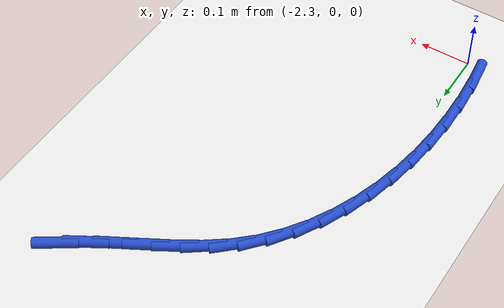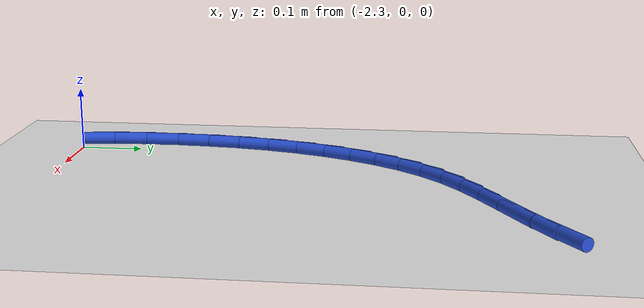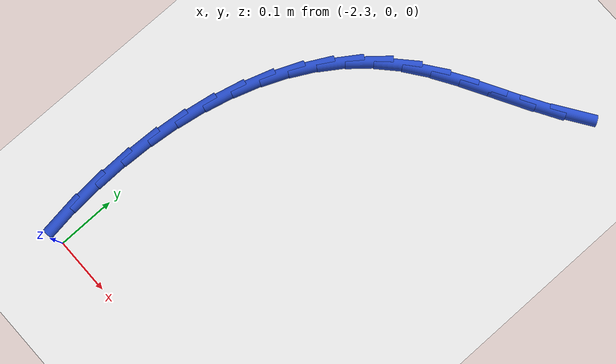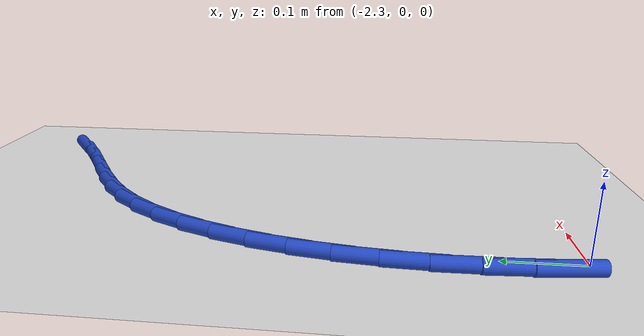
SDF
<sdf version="1.6">
 <world name="default">
  <model name="ground_plane">
   <static>1</static>
   <link name="link">
    <collision name="collision">
     <geometry><plane><normal>0 0 1</normal><size>100 100</size></plane></geometry>
     <surface><friction><ode><mu>100</mu><mu2>50</mu2></ode></friction></surface>
    </collision>
    <visual name="visual">
     <cast_shadows>0</cast_shadows>
     <geometry><plane><normal>0 0 1</normal><size>100 100</size></plane></geometry>
     <material>
      <script><uri>file://media/materials/scripts/gazebo.material</uri><name>Gazebo/WhiteGlow</name></script>
     </material>
    </visual>
   </link>
  </model>
  <model name="line">
   <link name="link_57">
    <pose>-1.903387301612877 0.7619432951352602 0.01 0 1.57 0.5943881100713446</pose>
    <collision name="collision">
     <geometry><cylinder><radius>0.01</radius><length>0.08</length></cylinder></geometry>
    </collision>
    <visual name="visual">
     <material>
      <script><name>Gazebo/Blue</name><uri>file://media/materials/scripts/gazebo.material</uri></script>
     </material>
     <geometry><cylinder><radius>0.01</radius><length>0.08</length></cylinder></geometry>
    </visual>
   </link>
   <link name="link_58">
    <pose>-1.9463217225282812 0.7329226433873264 0.01 0 1.57 0.5362124962702877</pose>
    <collision name="collision">
     <geometry><cylinder><radius>0.01</radius><length>0.08</length></cylinder></geometry>
    </collision>
    <visual name="visual">
     <material>
      <script><name>Gazebo/Blue</name><uri>file://media/materials/scripts/gazebo.material</uri></script>
     </material>
     <geometry><cylinder><radius>0.01</radius><length>0.08</length></cylinder></geometry>
    </visual>
   </link>
   <link name="link_59">
    <pose>-1.990192517689697 0.7068505436351241 0.01 0 1.57 0.5098250113790918</pose>
    <collision name="collision">
     <geometry><cylinder><radius>0.01</radius><length>0.08</length></cylinder></geometry>
    </collision>
    <visual name="visual">
     <material>
      <script><name>Gazebo/Blue</name><uri>file://media/materials/scripts/gazebo.material</uri></script>
     </material>
     <geometry><cylinder><radius>0.01</radius><length>0.08</length></cylinder></geometry>
    </visual>
   </link>
   <link name="link_60">
    <pose>-2.034065250260231 0.6823200266033079 0.01 0 1.57 0.5166607003762833</pose>
    <collision name="collision">
     <geometry><cylinder><radius>0.01</radius><length>0.08</length></cylinder></geometry>
    </collision>
    <visual name="visual">
     <material>
      <script><name>Gazebo/Blue</name><uri>file://media/materials/scripts/gazebo.material</uri></script>
     </material>
     <geometry><cylinder><radius>0.01</radius><length>0.08</length></cylinder></geometry>
    </visual>
   </link>
   <link name="link_61">
    <pose>-2.077005483402991 0.6579241230165326 0.01 0 1.57 0.5585546495133832</pose>
    <collision name="collision">
     <geometry><cylinder><radius>0.01</radius><length>0.08</length></cylinder></geometry>
    </collision>
    <visual name="visual">
     <material>
      <script><name>Gazebo/Blue</name><uri>file://media/materials/scripts/gazebo.material</uri></script>
     </material>
     <geometry><cylinder><radius>0.01</radius><length>0.08</length></cylinder></geometry>
    </visual>
   </link>
   <link name="link_62">
    <pose>-2.118078780281083 0.6322558635994527 0.01 0 1.57 0.6375152459106737</pose>
    <collision name="collision">
     <geometry><cylinder><radius>0.01</radius><length>0.08</length></cylinder></geometry>
    </collision>
    <visual name="visual">
     <material>
      <script><name>Gazebo/Blue</name><uri>file://media/materials/scripts/gazebo.material</uri></script>
     </material>
     <geometry><cylinder><radius>0.01</radius><length>0.08</length></cylinder></geometry>
    </visual>
   </link>
   <link name="link_63">
    <pose>-2.156350704057612 0.6039082790767228 0.01 0 1.57 0.7508035206176465</pose>
    <collision name="collision">
     <geometry><cylinder><radius>0.01</radius><length>0.08</length></cylinder></geometry>
    </collision>
    <visual name="visual">
     <material>
      <script><name>Gazebo/Blue</name><uri>file://media/materials/scripts/gazebo.material</uri></script>
     </material>
     <geometry><cylinder><radius>0.01</radius><length>0.08</length></cylinder></geometry>
    </visual>
   </link>
   <link name="link_64">
    <pose>-2.1909634653442778 0.57161116488495 0.01 0 1.57 0.8698479731634604</pose>
    <collision name="collision">
     <geometry><cylinder><radius>0.01</radius><length>0.08</length></cylinder></geometry>
    </collision>
    <visual name="visual">
     <material>
      <script><name>Gazebo/Blue</name><uri>file://media/materials/scripts/gazebo.material</uri></script>
     </material>
     <geometry><cylinder><radius>0.01</radius><length>0.08</length></cylinder></geometry>
    </visual>
   </link>
   <link name="link_65">
    <pose>-2.2216838471331766 0.5352087627113296 0.01 0 1.57 0.9801697368502972</pose>
    <collision name="collision">
     <geometry><cylinder><radius>0.01</radius><length>0.08</length></cylinder></geometry>
    </collision>
    <visual name="visual">
     <material>
      <script><name>Gazebo/Blue</name><uri>file://media/materials/scripts/gazebo.material</uri></script>
     </material>
     <geometry><cylinder><radius>0.01</radius><length>0.08</length></cylinder></geometry>
    </visual>
   </link>
   <link name="link_66">
    <pose>-2.248583037072549 0.49508847407263473 0.01 0 1.57 1.0812076367470602</pose>
    <collision name="collision">
     <geometry><cylinder><radius>0.01</radius><length>0.08</length></cylinder></geometry>
    </collision>
    <visual name="visual">
     <material>
      <script><name>Gazebo/Blue</name><uri>file://media/materials/scripts/gazebo.material</uri></script>
     </material>
     <geometry><cylinder><radius>0.01</radius><length>0.08</length></cylinder></geometry>
    </visual>
   </link>
   <link name="link_67">
    <pose>-2.2717342684287334 0.4516413505532575 0.01 0 1.57 1.1732474148710617</pose>
    <collision name="collision">
     <geometry><cylinder><radius>0.01</radius><length>0.08</length></cylinder></geometry>
    </collision>
    <visual name="visual">
     <material>
      <script><name>Gazebo/Blue</name><uri>file://media/materials/scripts/gazebo.material</uri></script>
     </material>
     <geometry><cylinder><radius>0.01</radius><length>0.08</length></cylinder></geometry>
    </visual>
   </link>
   <link name="link_68">
    <pose>-2.2912107744680705 0.40525844373759123 0.01 0 1.57 1.2570537970908655</pose>
    <collision name="collision">
     <geometry><cylinder><radius>0.01</radius><length>0.08</length></cylinder></geometry>
    </collision>
    <visual name="visual">
     <material>
      <script><name>Gazebo/Blue</name><uri>file://media/materials/scripts/gazebo.material</uri></script>
     </material>
     <geometry><cylinder><radius>0.01</radius><length>0.08</length></cylinder></geometry>
    </visual>
   </link>
   <link name="link_69">
    <pose>-2.3070857884568983 0.3563308052100277 0.01 0 1.57 1.3336371469000525</pose>
    <collision name="collision">
     <geometry><cylinder><radius>0.01</radius><length>0.08</length></cylinder></geometry>
    </collision>
    <visual name="visual">
     <material>
      <script><name>Gazebo/Blue</name><uri>file://media/materials/scripts/gazebo.material</uri></script>
     </material>
     <geometry><cylinder><radius>0.01</radius><length>0.08</length></cylinder></geometry>
    </visual>
   </link>
   <link name="link_70">
    <pose>-2.319432543661557 0.3052494865549594 0.01 0 1.57 1.4040939690445866</pose>
    <collision name="collision">
     <geometry><cylinder><radius>0.01</radius><length>0.08</length></cylinder></geometry>
    </collision>
    <visual name="visual">
     <material>
      <script><name>Gazebo/Blue</name><uri>file://media/materials/scripts/gazebo.material</uri></script>
     </material>
     <geometry><cylinder><radius>0.01</radius><length>0.08</length></cylinder></geometry>
    </visual>
   </link>
   <link name="link_71">
    <pose>-2.3283242733483855 0.25240553935677834 0.01 0 1.57 1.4695138243402548</pose>
    <collision name="collision">
     <geometry><cylinder><radius>0.01</radius><length>0.08</length></cylinder></geometry>
    </collision>
    <visual name="visual">
     <material>
      <script><name>Gazebo/Blue</name><uri>file://media/materials/scripts/gazebo.material</uri></script>
     </material>
     <geometry><cylinder><radius>0.01</radius><length>0.08</length></cylinder></geometry>
    </visual>
   </link>
   <link name="link_72">
    <pose>-2.3338342107837224 0.19819001519987756 0.01 0 1.57 1.5309345544895907</pose>
    <collision name="collision">
     <geometry><cylinder><radius>0.01</radius><length>0.08</length></cylinder></geometry>
    </collision>
    <visual name="visual">
     <material>
      <script><name>Gazebo/Blue</name><uri>file://media/materials/scripts/gazebo.material</uri></script>
     </material>
     <geometry><cylinder><radius>0.01</radius><length>0.08</length></cylinder></geometry>
    </visual>
   </link>
   <link name="link_73">
    <pose>-2.3360355892339073 0.14299396566864922 0.01 0 1.57 -1.5522641192050364</pose>
    <collision name="collision">
     <geometry><cylinder><radius>0.01</radius><length>0.08</length></cylinder></geometry>
    </collision>
    <visual name="visual">
     <material>
      <script><name>Gazebo/Blue</name><uri>file://media/materials/scripts/gazebo.material</uri></script>
     </material>
     <geometry><cylinder><radius>0.01</radius><length>0.08</length></cylinder></geometry>
    </visual>
   </link>
   <link name="link_74">
    <pose>-2.33500164196528 0.08720844234748584 0.01 0 1.57 -1.4959854357371398</pose>
    <collision name="collision">
     <geometry><cylinder><radius>0.01</radius><length>0.08</length></cylinder></geometry>
    </collision>
    <visual name="visual">
     <material>
      <script><name>Gazebo/Blue</name><uri>file://media/materials/scripts/gazebo.material</uri></script>
     </material>
     <geometry><cylinder><radius>0.01</radius><length>0.08</length></cylinder></geometry>
    </visual>
   </link>
   <link name="link_75">
    <pose>-2.330805602244179 0.03122449682077951 0.01 0 1.57 -1.4409568402950295</pose>
    <collision name="collision">
     <geometry><cylinder><radius>0.01</radius><length>0.08</length></cylinder></geometry>
    </collision>
    <visual name="visual">
     <material>
      <script><name>Gazebo/Blue</name><uri>file://media/materials/scripts/gazebo.material</uri></script>
     </material>
     <geometry><cylinder><radius>0.01</radius><length>0.08</length></cylinder></geometry>
    </visual>
   </link>
  </model>
 </world>
</sdf>
